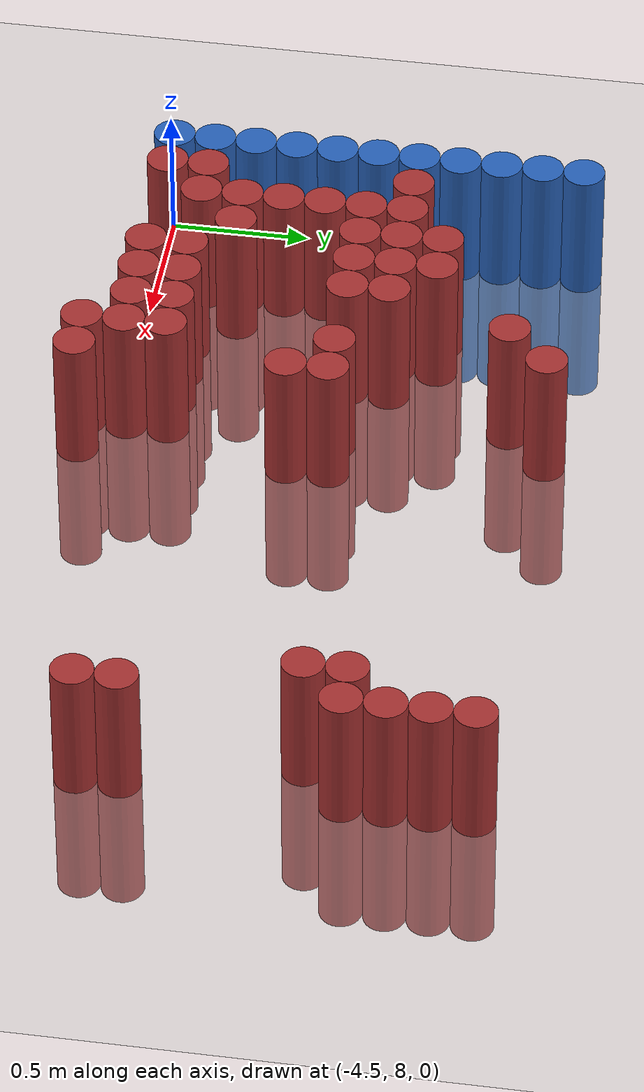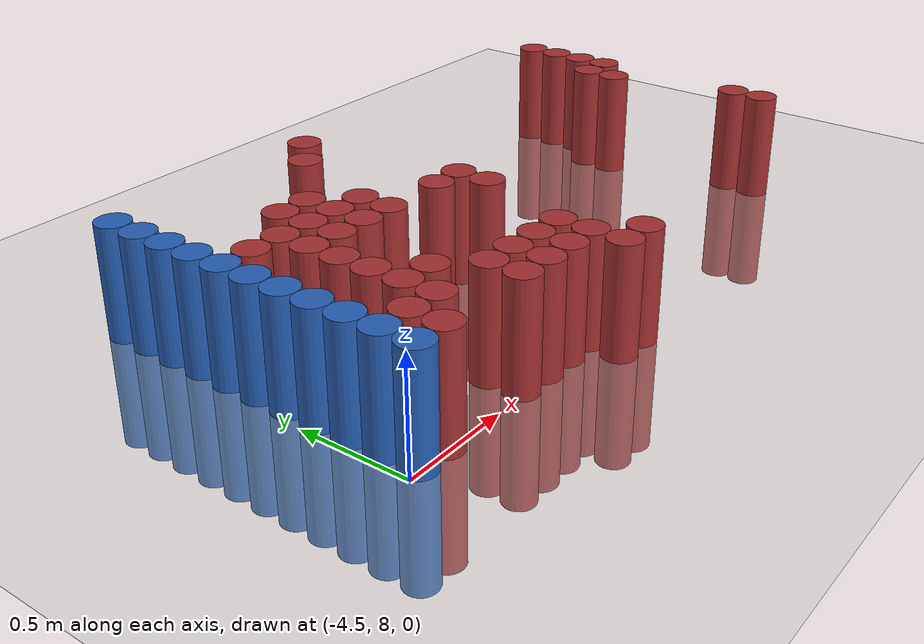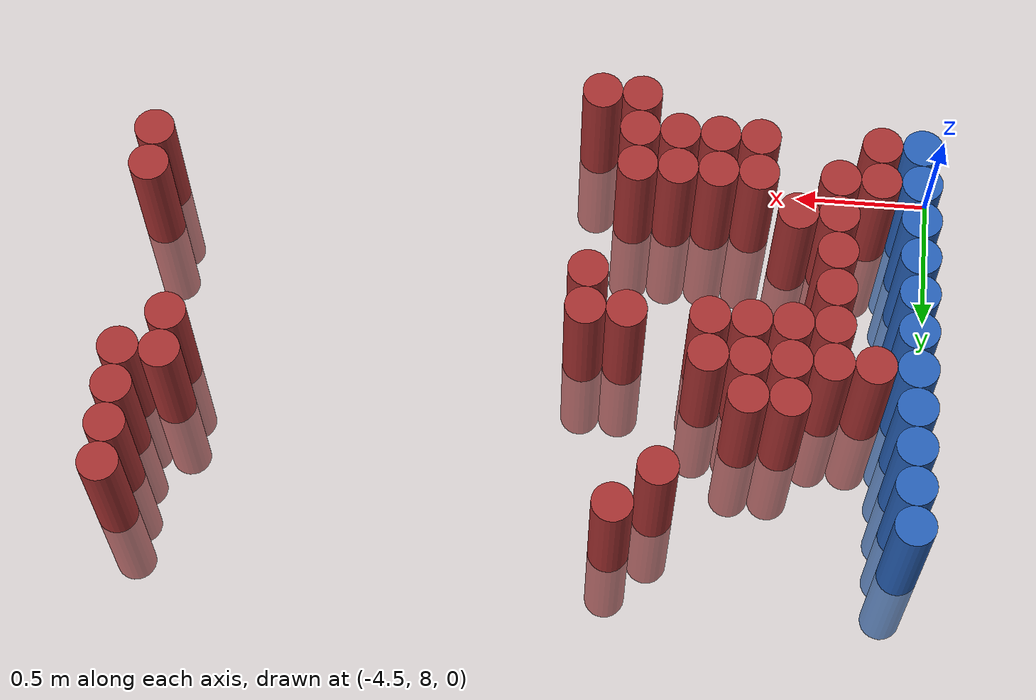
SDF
<sdf version="1.6">
 <world name="default">
  <model name="ground_plane">
   <static>1</static>
   <link name="link">
    <collision name="collision">
     <geometry><plane><normal>0 0 1</normal><size>100 100</size></plane></geometry>
     <surface><friction><ode><mu>100</mu><mu2>50</mu2></ode></friction></surface>
    </collision>
    <visual name="visual">
     <cast_shadows>0</cast_shadows>
     <geometry><plane><normal>0 0 1</normal><size>100 100</size></plane></geometry>
     <material>
      <script><uri>file://media/materials/scripts/gazebo.material</uri><name>Gazebo/Grey</name></script>
     </material>
    </visual>
   </link>
  </model>
  <model name="unit_cylinder_115">
   <static>1</static>
   <pose>-4.425000 8.025000 0.000000 0.000000 0.000000 0.000000</pose>
   <link name="link">
    <inertial>
     <mass>1</mass>
     <inertia><ixx>0.145833</ixx><ixy>0</ixy><ixz>0</ixz><iyy>0.145833</iyy><iyz>0</iyz><izz>0.125</izz></inertia>
    </inertial>
    <collision name="collision">
     <geometry><cylinder><radius>0.075000</radius><length>1</length></cylinder></geometry>
    </collision>
    <visual name="visual">
     <geometry><cylinder><radius>0.075000</radius><length>1</length></cylinder></geometry>
     <material>
      <ambient>0.152000 0.379000 0.720000 1</ambient>
      <diffuse>0.152000 0.379000 0.720000 1</diffuse>
     </material>
     <material>
      <script><name>Gazebo/Grey</name><uri>file://media/materials/scripts/gazebo.material</uri></script>
     </material>
    </visual>
   </link>
  </model>
  <model name="unit_cylinder_116">
   <static>1</static>
   <pose>-4.425000 8.175000 0.000000 0.000000 0.000000 0.000000</pose>
   <link name="link">
    <inertial>
     <mass>1</mass>
     <inertia><ixx>0.145833</ixx><ixy>0</ixy><ixz>0</ixz><iyy>0.145833</iyy><iyz>0</iyz><izz>0.125</izz></inertia>
    </inertial>
    <collision name="collision">
     <geometry><cylinder><radius>0.075000</radius><length>1</length></cylinder></geometry>
    </collision>
    <visual name="visual">
     <geometry><cylinder><radius>0.075000</radius><length>1</length></cylinder></geometry>
     <material>
      <ambient>0.152000 0.379000 0.720000 1</ambient>
      <diffuse>0.152000 0.379000 0.720000 1</diffuse>
     </material>
     <material>
      <script><name>Gazebo/Grey</name><uri>file://media/materials/scripts/gazebo.material</uri></script>
     </material>
    </visual>
   </link>
  </model>
  <model name="unit_cylinder_117">
   <static>1</static>
   <pose>-4.425000 8.325000 0.000000 0.000000 0.000000 0.000000</pose>
   <link name="link">
    <inertial>
     <mass>1</mass>
     <inertia><ixx>0.145833</ixx><ixy>0</ixy><ixz>0</ixz><iyy>0.145833</iyy><iyz>0</iyz><izz>0.125</izz></inertia>
    </inertial>
    <collision name="collision">
     <geometry><cylinder><radius>0.075000</radius><length>1</length></cylinder></geometry>
    </collision>
    <visual name="visual">
     <geometry><cylinder><radius>0.075000</radius><length>1</length></cylinder></geometry>
     <material>
      <ambient>0.152000 0.379000 0.720000 1</ambient>
      <diffuse>0.152000 0.379000 0.720000 1</diffuse>
     </material>
     <material>
      <script><name>Gazebo/Grey</name><uri>file://media/materials/scripts/gazebo.material</uri></script>
     </material>
    </visual>
   </link>
  </model>
  <model name="unit_cylinder_118">
   <static>1</static>
   <pose>-4.425000 8.475000 0.000000 0.000000 0.000000 0.000000</pose>
   <link name="link">
    <inertial>
     <mass>1</mass>
     <inertia><ixx>0.145833</ixx><ixy>0</ixy><ixz>0</ixz><iyy>0.145833</iyy><iyz>0</iyz><izz>0.125</izz></inertia>
    </inertial>
    <collision name="collision">
     <geometry><cylinder><radius>0.075000</radius><length>1</length></cylinder></geometry>
    </collision>
    <visual name="visual">
     <geometry><cylinder><radius>0.075000</radius><length>1</length></cylinder></geometry>
     <material>
      <ambient>0.152000 0.379000 0.720000 1</ambient>
      <diffuse>0.152000 0.379000 0.720000 1</diffuse>
     </material>
     <material>
      <script><name>Gazebo/Grey</name><uri>file://media/materials/scripts/gazebo.material</uri></script>
     </material>
    </visual>
   </link>
  </model>
  <model name="unit_cylinder_119">
   <static>1</static>
   <pose>-4.425000 8.625000 0.000000 0.000000 0.000000 0.000000</pose>
   <link name="link">
    <inertial>
     <mass>1</mass>
     <inertia><ixx>0.145833</ixx><ixy>0</ixy><ixz>0</ixz><iyy>0.145833</iyy><iyz>0</iyz><izz>0.125</izz></inertia>
    </inertial>
    <collision name="collision">
     <geometry><cylinder><radius>0.075000</radius><length>1</length></cylinder></geometry>
    </collision>
    <visual name="visual">
     <geometry><cylinder><radius>0.075000</radius><length>1</length></cylinder></geometry>
     <material>
      <ambient>0.152000 0.379000 0.720000 1</ambient>
      <diffuse>0.152000 0.379000 0.720000 1</diffuse>
     </material>
     <material>
      <script><name>Gazebo/Grey</name><uri>file://media/materials/scripts/gazebo.material</uri></script>
     </material>
    </visual>
   </link>
  </model>
  <model name="unit_cylinder_120">
   <static>1</static>
   <pose>-4.425000 8.775000 0.000000 0.000000 0.000000 0.000000</pose>
   <link name="link">
    <inertial>
     <mass>1</mass>
     <inertia><ixx>0.145833</ixx><ixy>0</ixy><ixz>0</ixz><iyy>0.145833</iyy><iyz>0</iyz><izz>0.125</izz></inertia>
    </inertial>
    <collision name="collision">
     <geometry><cylinder><radius>0.075000</radius><length>1</length></cylinder></geometry>
    </collision>
    <visual name="visual">
     <geometry><cylinder><radius>0.075000</radius><length>1</length></cylinder></geometry>
     <material>
      <ambient>0.152000 0.379000 0.720000 1</ambient>
      <diffuse>0.152000 0.379000 0.720000 1</diffuse>
     </material>
     <material>
      <script><name>Gazebo/Grey</name><uri>file://media/materials/scripts/gazebo.material</uri></script>
     </material>
    </visual>
   </link>
  </model>
  <model name="unit_cylinder_121">
   <static>1</static>
   <pose>-4.425000 8.925000 0.000000 0.000000 0.000000 0.000000</pose>
   <link name="link">
    <inertial>
     <mass>1</mass>
     <inertia><ixx>0.145833</ixx><ixy>0</ixy><ixz>0</ixz><iyy>0.145833</iyy><iyz>0</iyz><izz>0.125</izz></inertia>
    </inertial>
    <collision name="collision">
     <geometry><cylinder><radius>0.075000</radius><length>1</length></cylinder></geometry>
    </collision>
    <visual name="visual">
     <geometry><cylinder><radius>0.075000</radius><length>1</length></cylinder></geometry>
     <material>
      <ambient>0.152000 0.379000 0.720000 1</ambient>
      <diffuse>0.152000 0.379000 0.720000 1</diffuse>
     </material>
     <material>
      <script><name>Gazebo/Grey</name><uri>file://media/materials/scripts/gazebo.material</uri></script>
     </material>
    </visual>
   </link>
  </model>
  <model name="unit_cylinder_122">
   <static>1</static>
   <pose>-4.425000 9.075000 0.000000 0.000000 0.000000 0.000000</pose>
   <link name="link">
    <inertial>
     <mass>1</mass>
     <inertia><ixx>0.145833</ixx><ixy>0</ixy><ixz>0</ixz><iyy>0.145833</iyy><iyz>0</iyz><izz>0.125</izz></inertia>
    </inertial>
    <collision name="collision">
     <geometry><cylinder><radius>0.075000</radius><length>1</length></cylinder></geometry>
    </collision>
    <visual name="visual">
     <geometry><cylinder><radius>0.075000</radius><length>1</length></cylinder></geometry>
     <material>
      <ambient>0.152000 0.379000 0.720000 1</ambient>
      <diffuse>0.152000 0.379000 0.720000 1</diffuse>
     </material>
     <material>
      <script><name>Gazebo/Grey</name><uri>file://media/materials/scripts/gazebo.material</uri></script>
     </material>
    </visual>
   </link>
  </model>
  <model name="unit_cylinder_123">
   <static>1</static>
   <pose>-4.425000 9.225000 0.000000 0.000000 0.000000 0.000000</pose>
   <link name="link">
    <inertial>
     <mass>1</mass>
     <inertia><ixx>0.145833</ixx><ixy>0</ixy><ixz>0</ixz><iyy>0.145833</iyy><iyz>0</iyz><izz>0.125</izz></inertia>
    </inertial>
    <collision name="collision">
     <geometry><cylinder><radius>0.075000</radius><length>1</length></cylinder></geometry>
    </collision>
    <visual name="visual">
     <geometry><cylinder><radius>0.075000</radius><length>1</length></cylinder></geometry>
     <material>
      <ambient>0.152000 0.379000 0.720000 1</ambient>
      <diffuse>0.152000 0.379000 0.720000 1</diffuse>
     </material>
     <material>
      <script><name>Gazebo/Grey</name><uri>file://media/materials/scripts/gazebo.material</uri></script>
     </material>
    </visual>
   </link>
  </model>
  <model name="unit_cylinder_124">
   <static>1</static>
   <pose>-4.425000 9.375000 0.000000 0.000000 0.000000 0.000000</pose>
   <link name="link">
    <inertial>
     <mass>1</mass>
     <inertia><ixx>0.145833</ixx><ixy>0</ixy><ixz>0</ixz><iyy>0.145833</iyy><iyz>0</iyz><izz>0.125</izz></inertia>
    </inertial>
    <collision name="collision">
     <geometry><cylinder><radius>0.075000</radius><length>1</length></cylinder></geometry>
    </collision>
    <visual name="visual">
     <geometry><cylinder><radius>0.075000</radius><length>1</length></cylinder></geometry>
     <material>
      <ambient>0.152000 0.379000 0.720000 1</ambient>
      <diffuse>0.152000 0.379000 0.720000 1</diffuse>
     </material>
     <material>
      <script><name>Gazebo/Grey</name><uri>file://media/materials/scripts/gazebo.material</uri></script>
     </material>
    </visual>
   </link>
  </model>
  <model name="unit_cylinder_125">
   <static>1</static>
   <pose>-4.425000 9.525000 0.000000 0.000000 0.000000 0.000000</pose>
   <link name="link">
    <inertial>
     <mass>1</mass>
     <inertia><ixx>0.145833</ixx><ixy>0</ixy><ixz>0</ixz><iyy>0.145833</iyy><iyz>0</iyz><izz>0.125</izz></inertia>
    </inertial>
    <collision name="collision">
     <geometry><cylinder><radius>0.075000</radius><length>1</length></cylinder></geometry>
    </collision>
    <visual name="visual">
     <geometry><cylinder><radius>0.075000</radius><length>1</length></cylinder></geometry>
     <material>
      <ambient>0.152000 0.379000 0.720000 1</ambient>
      <diffuse>0.152000 0.379000 0.720000 1</diffuse>
     </material>
     <material>
      <script><name>Gazebo/Grey</name><uri>file://media/materials/scripts/gazebo.material</uri></script>
     </material>
    </visual>
   </link>
  </model>
  <model name="unit_cylinder_134">
   <static>1</static>
   <pose>-4.275000 8.025000 0.000000 0.000000 0.000000 0.000000</pose>
   <link name="link">
    <inertial>
     <mass>1</mass>
     <inertia><ixx>0.145833</ixx><ixy>0</ixy><ixz>0</ixz><iyy>0.145833</iyy><iyz>0</iyz><izz>0.125</izz></inertia>
    </inertial>
    <collision name="collision">
     <geometry><cylinder><radius>0.075000</radius><length>1</length></cylinder></geometry>
    </collision>
    <visual name="visual">
     <geometry><cylinder><radius>0.075000</radius><length>1</length></cylinder></geometry>
     <material>
      <ambient>0.648000 0.192000 0.192000 1</ambient>
      <diffuse>0.648000 0.192000 0.192000 1</diffuse>
     </material>
     <material>
      <script><name>Gazebo/Grey</name><uri>file://media/materials/scripts/gazebo.material</uri></script>
     </material>
    </visual>
   </link>
  </model>
  <model name="unit_cylinder_135">
   <static>1</static>
   <pose>-4.275000 8.175000 0.000000 0.000000 0.000000 0.000000</pose>
   <link name="link">
    <inertial>
     <mass>1</mass>
     <inertia><ixx>0.145833</ixx><ixy>0</ixy><ixz>0</ixz><iyy>0.145833</iyy><iyz>0</iyz><izz>0.125</izz></inertia>
    </inertial>
    <collision name="collision">
     <geometry><cylinder><radius>0.075000</radius><length>1</length></cylinder></geometry>
    </collision>
    <visual name="visual">
     <geometry><cylinder><radius>0.075000</radius><length>1</length></cylinder></geometry>
     <material>
      <ambient>0.648000 0.192000 0.192000 1</ambient>
      <diffuse>0.648000 0.192000 0.192000 1</diffuse>
     </material>
     <material>
      <script><name>Gazebo/Grey</name><uri>file://media/materials/scripts/gazebo.material</uri></script>
     </material>
    </visual>
   </link>
  </model>
  <model name="unit_cylinder_136">
   <static>1</static>
   <pose>-4.275000 8.925000 0.000000 0.000000 0.000000 0.000000</pose>
   <link name="link">
    <inertial>
     <mass>1</mass>
     <inertia><ixx>0.145833</ixx><ixy>0</ixy><ixz>0</ixz><iyy>0.145833</iyy><iyz>0</iyz><izz>0.125</izz></inertia>
    </inertial>
    <collision name="collision">
     <geometry><cylinder><radius>0.075000</radius><length>1</length></cylinder></geometry>
    </collision>
    <visual name="visual">
     <geometry><cylinder><radius>0.075000</radius><length>1</length></cylinder></geometry>
     <material>
      <ambient>0.648000 0.192000 0.192000 1</ambient>
      <diffuse>0.648000 0.192000 0.192000 1</diffuse>
     </material>
     <material>
      <script><name>Gazebo/Grey</name><uri>file://media/materials/scripts/gazebo.material</uri></script>
     </material>
    </visual>
   </link>
  </model>
  <model name="unit_cylinder_141">
   <static>1</static>
   <pose>-4.125000 8.175000 0.000000 0.000000 0.000000 0.000000</pose>
   <link name="link">
    <inertial>
     <mass>1</mass>
     <inertia><ixx>0.145833</ixx><ixy>0</ixy><ixz>0</ixz><iyy>0.145833</iyy><iyz>0</iyz><izz>0.125</izz></inertia>
    </inertial>
    <collision name="collision">
     <geometry><cylinder><radius>0.075000</radius><length>1</length></cylinder></geometry>
    </collision>
    <visual name="visual">
     <geometry><cylinder><radius>0.075000</radius><length>1</length></cylinder></geometry>
     <material>
      <ambient>0.648000 0.192000 0.192000 1</ambient>
      <diffuse>0.648000 0.192000 0.192000 1</diffuse>
     </material>
     <material>
      <script><name>Gazebo/Grey</name><uri>file://media/materials/scripts/gazebo.material</uri></script>
     </material>
    </visual>
   </link>
  </model>
  <model name="unit_cylinder_142">
   <static>1</static>
   <pose>-4.125000 8.325000 0.000000 0.000000 0.000000 0.000000</pose>
   <link name="link">
    <inertial>
     <mass>1</mass>
     <inertia><ixx>0.145833</ixx><ixy>0</ixy><ixz>0</ixz><iyy>0.145833</iyy><iyz>0</iyz><izz>0.125</izz></inertia>
    </inertial>
    <collision name="collision">
     <geometry><cylinder><radius>0.075000</radius><length>1</length></cylinder></geometry>
    </collision>
    <visual name="visual">
     <geometry><cylinder><radius>0.075000</radius><length>1</length></cylinder></geometry>
     <material>
      <ambient>0.648000 0.192000 0.192000 1</ambient>
      <diffuse>0.648000 0.192000 0.192000 1</diffuse>
     </material>
     <material>
      <script><name>Gazebo/Grey</name><uri>file://media/materials/scripts/gazebo.material</uri></script>
     </material>
    </visual>
   </link>
  </model>
  <model name="unit_cylinder_143">
   <static>1</static>
   <pose>-4.125000 8.475000 0.000000 0.000000 0.000000 0.000000</pose>
   <link name="link">
    <inertial>
     <mass>1</mass>
     <inertia><ixx>0.145833</ixx><ixy>0</ixy><ixz>0</ixz><iyy>0.145833</iyy><iyz>0</iyz><izz>0.125</izz></inertia>
    </inertial>
    <collision name="collision">
     <geometry><cylinder><radius>0.075000</radius><length>1</length></cylinder></geometry>
    </collision>
    <visual name="visual">
     <geometry><cylinder><radius>0.075000</radius><length>1</length></cylinder></geometry>
     <material>
      <ambient>0.648000 0.192000 0.192000 1</ambient>
      <diffuse>0.648000 0.192000 0.192000 1</diffuse>
     </material>
     <material>
      <script><name>Gazebo/Grey</name><uri>file://media/materials/scripts/gazebo.material</uri></script>
     </material>
    </visual>
   </link>
  </model>
  <model name="unit_cylinder_144">
   <static>1</static>
   <pose>-4.125000 8.625000 0.000000 0.000000 0.000000 0.000000</pose>
   <link name="link">
    <inertial>
     <mass>1</mass>
     <inertia><ixx>0.145833</ixx><ixy>0</ixy><ixz>0</ixz><iyy>0.145833</iyy><iyz>0</iyz><izz>0.125</izz></inertia>
    </inertial>
    <collision name="collision">
     <geometry><cylinder><radius>0.075000</radius><length>1</length></cylinder></geometry>
    </collision>
    <visual name="visual">
     <geometry><cylinder><radius>0.075000</radius><length>1</length></cylinder></geometry>
     <material>
      <ambient>0.648000 0.192000 0.192000 1</ambient>
      <diffuse>0.648000 0.192000 0.192000 1</diffuse>
     </material>
     <material>
      <script><name>Gazebo/Grey</name><uri>file://media/materials/scripts/gazebo.material</uri></script>
     </material>
    </visual>
   </link>
  </model>
  <model name="unit_cylinder_145">
   <static>1</static>
   <pose>-4.125000 8.775000 0.000000 0.000000 0.000000 0.000000</pose>
   <link name="link">
    <inertial>
     <mass>1</mass>
     <inertia><ixx>0.145833</ixx><ixy>0</ixy><ixz>0</ixz><iyy>0.145833</iyy><iyz>0</iyz><izz>0.125</izz></inertia>
    </inertial>
    <collision name="collision">
     <geometry><cylinder><radius>0.075000</radius><length>1</length></cylinder></geometry>
    </collision>
    <visual name="visual">
     <geometry><cylinder><radius>0.075000</radius><length>1</length></cylinder></geometry>
     <material>
      <ambient>0.648000 0.192000 0.192000 1</ambient>
      <diffuse>0.648000 0.192000 0.192000 1</diffuse>
     </material>
     <material>
      <script><name>Gazebo/Grey</name><uri>file://media/materials/scripts/gazebo.material</uri></script>
     </material>
    </visual>
   </link>
  </model>
  <model name="unit_cylinder_146">
   <static>1</static>
   <pose>-4.125000 8.925000 0.000000 0.000000 0.000000 0.000000</pose>
   <link name="link">
    <inertial>
     <mass>1</mass>
     <inertia><ixx>0.145833</ixx><ixy>0</ixy><ixz>0</ixz><iyy>0.145833</iyy><iyz>0</iyz><izz>0.125</izz></inertia>
    </inertial>
    <collision name="collision">
     <geometry><cylinder><radius>0.075000</radius><length>1</length></cylinder></geometry>
    </collision>
    <visual name="visual">
     <geometry><cylinder><radius>0.075000</radius><length>1</length></cylinder></geometry>
     <material>
      <ambient>0.648000 0.192000 0.192000 1</ambient>
      <diffuse>0.648000 0.192000 0.192000 1</diffuse>
     </material>
     <material>
      <script><name>Gazebo/Grey</name><uri>file://media/materials/scripts/gazebo.material</uri></script>
     </material>
    </visual>
   </link>
  </model>
  <model name="unit_cylinder_149">
   <static>1</static>
   <pose>-3.975000 8.325000 0.000000 0.000000 0.000000 0.000000</pose>
   <link name="link">
    <inertial>
     <mass>1</mass>
     <inertia><ixx>0.145833</ixx><ixy>0</ixy><ixz>0</ixz><iyy>0.145833</iyy><iyz>0</iyz><izz>0.125</izz></inertia>
    </inertial>
    <collision name="collision">
     <geometry><cylinder><radius>0.075000</radius><length>1</length></cylinder></geometry>
    </collision>
    <visual name="visual">
     <geometry><cylinder><radius>0.075000</radius><length>1</length></cylinder></geometry>
     <material>
      <ambient>0.648000 0.192000 0.192000 1</ambient>
      <diffuse>0.648000 0.192000 0.192000 1</diffuse>
     </material>
     <material>
      <script><name>Gazebo/Grey</name><uri>file://media/materials/scripts/gazebo.material</uri></script>
     </material>
    </visual>
   </link>
  </model>
  <model name="unit_cylinder_150">
   <static>1</static>
   <pose>-3.975000 8.775000 0.000000 0.000000 0.000000 0.000000</pose>
   <link name="link">
    <inertial>
     <mass>1</mass>
     <inertia><ixx>0.145833</ixx><ixy>0</ixy><ixz>0</ixz><iyy>0.145833</iyy><iyz>0</iyz><izz>0.125</izz></inertia>
    </inertial>
    <collision name="collision">
     <geometry><cylinder><radius>0.075000</radius><length>1</length></cylinder></geometry>
    </collision>
    <visual name="visual">
     <geometry><cylinder><radius>0.075000</radius><length>1</length></cylinder></geometry>
     <material>
      <ambient>0.648000 0.192000 0.192000 1</ambient>
      <diffuse>0.648000 0.192000 0.192000 1</diffuse>
     </material>
     <material>
      <script><name>Gazebo/Grey</name><uri>file://media/materials/scripts/gazebo.material</uri></script>
     </material>
    </visual>
   </link>
  </model>
  <model name="unit_cylinder_151">
   <static>1</static>
   <pose>-3.975000 8.925000 0.000000 0.000000 0.000000 0.000000</pose>
   <link name="link">
    <inertial>
     <mass>1</mass>
     <inertia><ixx>0.145833</ixx><ixy>0</ixy><ixz>0</ixz><iyy>0.145833</iyy><iyz>0</iyz><izz>0.125</izz></inertia>
    </inertial>
    <collision name="collision">
     <geometry><cylinder><radius>0.075000</radius><length>1</length></cylinder></geometry>
    </collision>
    <visual name="visual">
     <geometry><cylinder><radius>0.075000</radius><length>1</length></cylinder></geometry>
     <material>
      <ambient>0.648000 0.192000 0.192000 1</ambient>
      <diffuse>0.648000 0.192000 0.192000 1</diffuse>
     </material>
     <material>
      <script><name>Gazebo/Grey</name><uri>file://media/materials/scripts/gazebo.material</uri></script>
     </material>
    </visual>
   </link>
  </model>
  <model name="unit_cylinder_152">
   <static>1</static>
   <pose>-3.975000 9.075000 0.000000 0.000000 0.000000 0.000000</pose>
   <link name="link">
    <inertial>
     <mass>1</mass>
     <inertia><ixx>0.145833</ixx><ixy>0</ixy><ixz>0</ixz><iyy>0.145833</iyy><iyz>0</iyz><izz>0.125</izz></inertia>
    </inertial>
    <collision name="collision">
     <geometry><cylinder><radius>0.075000</radius><length>1</length></cylinder></geometry>
    </collision>
    <visual name="visual">
     <geometry><cylinder><radius>0.075000</radius><length>1</length></cylinder></geometry>
     <material>
      <ambient>0.648000 0.192000 0.192000 1</ambient>
      <diffuse>0.648000 0.192000 0.192000 1</diffuse>
     </material>
     <material>
      <script><name>Gazebo/Grey</name><uri>file://media/materials/scripts/gazebo.material</uri></script>
     </material>
    </visual>
   </link>
  </model>
  <model name="unit_cylinder_154">
   <static>1</static>
   <pose>-3.825000 8.025000 0.000000 0.000000 0.000000 0.000000</pose>
   <link name="link">
    <inertial>
     <mass>1</mass>
     <inertia><ixx>0.145833</ixx><ixy>0</ixy><ixz>0</ixz><iyy>0.145833</iyy><iyz>0</iyz><izz>0.125</izz></inertia>
    </inertial>
    <collision name="collision">
     <geometry><cylinder><radius>0.075000</radius><length>1</length></cylinder></geometry>
    </collision>
    <visual name="visual">
     <geometry><cylinder><radius>0.075000</radius><length>1</length></cylinder></geometry>
     <material>
      <ambient>0.648000 0.192000 0.192000 1</ambient>
      <diffuse>0.648000 0.192000 0.192000 1</diffuse>
     </material>
     <material>
      <script><name>Gazebo/Grey</name><uri>file://media/materials/scripts/gazebo.material</uri></script>
     </material>
    </visual>
   </link>
  </model>
  <model name="unit_cylinder_155">
   <static>1</static>
   <pose>-3.825000 8.175000 0.000000 0.000000 0.000000 0.000000</pose>
   <link name="link">
    <inertial>
     <mass>1</mass>
     <inertia><ixx>0.145833</ixx><ixy>0</ixy><ixz>0</ixz><iyy>0.145833</iyy><iyz>0</iyz><izz>0.125</izz></inertia>
    </inertial>
    <collision name="collision">
     <geometry><cylinder><radius>0.075000</radius><length>1</length></cylinder></geometry>
    </collision>
    <visual name="visual">
     <geometry><cylinder><radius>0.075000</radius><length>1</length></cylinder></geometry>
     <material>
      <ambient>0.648000 0.192000 0.192000 1</ambient>
      <diffuse>0.648000 0.192000 0.192000 1</diffuse>
     </material>
     <material>
      <script><name>Gazebo/Grey</name><uri>file://media/materials/scripts/gazebo.material</uri></script>
     </material>
    </visual>
   </link>
  </model>
  <model name="unit_cylinder_156">
   <static>1</static>
   <pose>-3.825000 8.775000 0.000000 0.000000 0.000000 0.000000</pose>
   <link name="link">
    <inertial>
     <mass>1</mass>
     <inertia><ixx>0.145833</ixx><ixy>0</ixy><ixz>0</ixz><iyy>0.145833</iyy><iyz>0</iyz><izz>0.125</izz></inertia>
    </inertial>
    <collision name="collision">
     <geometry><cylinder><radius>0.075000</radius><length>1</length></cylinder></geometry>
    </collision>
    <visual name="visual">
     <geometry><cylinder><radius>0.075000</radius><length>1</length></cylinder></geometry>
     <material>
      <ambient>0.648000 0.192000 0.192000 1</ambient>
      <diffuse>0.648000 0.192000 0.192000 1</diffuse>
     </material>
     <material>
      <script><name>Gazebo/Grey</name><uri>file://media/materials/scripts/gazebo.material</uri></script>
     </material>
    </visual>
   </link>
  </model>
  <model name="unit_cylinder_157">
   <static>1</static>
   <pose>-3.825000 8.925000 0.000000 0.000000 0.000000 0.000000</pose>
   <link name="link">
    <inertial>
     <mass>1</mass>
     <inertia><ixx>0.145833</ixx><ixy>0</ixy><ixz>0</ixz><iyy>0.145833</iyy><iyz>0</iyz><izz>0.125</izz></inertia>
    </inertial>
    <collision name="collision">
     <geometry><cylinder><radius>0.075000</radius><length>1</length></cylinder></geometry>
    </collision>
    <visual name="visual">
     <geometry><cylinder><radius>0.075000</radius><length>1</length></cylinder></geometry>
     <material>
      <ambient>0.648000 0.192000 0.192000 1</ambient>
      <diffuse>0.648000 0.192000 0.192000 1</diffuse>
     </material>
     <material>
      <script><name>Gazebo/Grey</name><uri>file://media/materials/scripts/gazebo.material</uri></script>
     </material>
    </visual>
   </link>
  </model>
  <model name="unit_cylinder_158">
   <static>1</static>
   <pose>-3.825000 9.075000 0.000000 0.000000 0.000000 0.000000</pose>
   <link name="link">
    <inertial>
     <mass>1</mass>
     <inertia><ixx>0.145833</ixx><ixy>0</ixy><ixz>0</ixz><iyy>0.145833</iyy><iyz>0</iyz><izz>0.125</izz></inertia>
    </inertial>
    <collision name="collision">
     <geometry><cylinder><radius>0.075000</radius><length>1</length></cylinder></geometry>
    </collision>
    <visual name="visual">
     <geometry><cylinder><radius>0.075000</radius><length>1</length></cylinder></geometry>
     <material>
      <ambient>0.648000 0.192000 0.192000 1</ambient>
      <diffuse>0.648000 0.192000 0.192000 1</diffuse>
     </material>
     <material>
      <script><name>Gazebo/Grey</name><uri>file://media/materials/scripts/gazebo.material</uri></script>
     </material>
    </visual>
   </link>
  </model>
  <model name="unit_cylinder_163">
   <static>1</static>
   <pose>-3.675000 8.025000 0.000000 0.000000 0.000000 0.000000</pose>
   <link name="link">
    <inertial>
     <mass>1</mass>
     <inertia><ixx>0.145833</ixx><ixy>0</ixy><ixz>0</ixz><iyy>0.145833</iyy><iyz>0</iyz><izz>0.125</izz></inertia>
    </inertial>
    <collision name="collision">
     <geometry><cylinder><radius>0.075000</radius><length>1</length></cylinder></geometry>
    </collision>
    <visual name="visual">
     <geometry><cylinder><radius>0.075000</radius><length>1</length></cylinder></geometry>
     <material>
      <ambient>0.648000 0.192000 0.192000 1</ambient>
      <diffuse>0.648000 0.192000 0.192000 1</diffuse>
     </material>
     <material>
      <script><name>Gazebo/Grey</name><uri>file://media/materials/scripts/gazebo.material</uri></script>
     </material>
    </visual>
   </link>
  </model>
  <model name="unit_cylinder_164">
   <static>1</static>
   <pose>-3.675000 8.175000 0.000000 0.000000 0.000000 0.000000</pose>
   <link name="link">
    <inertial>
     <mass>1</mass>
     <inertia><ixx>0.145833</ixx><ixy>0</ixy><ixz>0</ixz><iyy>0.145833</iyy><iyz>0</iyz><izz>0.125</izz></inertia>
    </inertial>
    <collision name="collision">
     <geometry><cylinder><radius>0.075000</radius><length>1</length></cylinder></geometry>
    </collision>
    <visual name="visual">
     <geometry><cylinder><radius>0.075000</radius><length>1</length></cylinder></geometry>
     <material>
      <ambient>0.648000 0.192000 0.192000 1</ambient>
      <diffuse>0.648000 0.192000 0.192000 1</diffuse>
     </material>
     <material>
      <script><name>Gazebo/Grey</name><uri>file://media/materials/scripts/gazebo.material</uri></script>
     </material>
    </visual>
   </link>
  </model>
  <model name="unit_cylinder_165">
   <static>1</static>
   <pose>-3.675000 8.775000 0.000000 0.000000 0.000000 0.000000</pose>
   <link name="link">
    <inertial>
     <mass>1</mass>
     <inertia><ixx>0.145833</ixx><ixy>0</ixy><ixz>0</ixz><iyy>0.145833</iyy><iyz>0</iyz><izz>0.125</izz></inertia>
    </inertial>
    <collision name="collision">
     <geometry><cylinder><radius>0.075000</radius><length>1</length></cylinder></geometry>
    </collision>
    <visual name="visual">
     <geometry><cylinder><radius>0.075000</radius><length>1</length></cylinder></geometry>
     <material>
      <ambient>0.648000 0.192000 0.192000 1</ambient>
      <diffuse>0.648000 0.192000 0.192000 1</diffuse>
     </material>
     <material>
      <script><name>Gazebo/Grey</name><uri>file://media/materials/scripts/gazebo.material</uri></script>
     </material>
    </visual>
   </link>
  </model>
  <model name="unit_cylinder_166">
   <static>1</static>
   <pose>-3.675000 8.925000 0.000000 0.000000 0.000000 0.000000</pose>
   <link name="link">
    <inertial>
     <mass>1</mass>
     <inertia><ixx>0.145833</ixx><ixy>0</ixy><ixz>0</ixz><iyy>0.145833</iyy><iyz>0</iyz><izz>0.125</izz></inertia>
    </inertial>
    <collision name="collision">
     <geometry><cylinder><radius>0.075000</radius><length>1</length></cylinder></geometry>
    </collision>
    <visual name="visual">
     <geometry><cylinder><radius>0.075000</radius><length>1</length></cylinder></geometry>
     <material>
      <ambient>0.648000 0.192000 0.192000 1</ambient>
      <diffuse>0.648000 0.192000 0.192000 1</diffuse>
     </material>
     <material>
      <script><name>Gazebo/Grey</name><uri>file://media/materials/scripts/gazebo.material</uri></script>
     </material>
    </visual>
   </link>
  </model>
  <model name="unit_cylinder_175">
   <static>1</static>
   <pose>-3.525000 8.025000 0.000000 0.000000 0.000000 0.000000</pose>
   <link name="link">
    <inertial>
     <mass>1</mass>
     <inertia><ixx>0.145833</ixx><ixy>0</ixy><ixz>0</ixz><iyy>0.145833</iyy><iyz>0</iyz><izz>0.125</izz></inertia>
    </inertial>
    <collision name="collision">
     <geometry><cylinder><radius>0.075000</radius><length>1</length></cylinder></geometry>
    </collision>
    <visual name="visual">
     <geometry><cylinder><radius>0.075000</radius><length>1</length></cylinder></geometry>
     <material>
      <ambient>0.648000 0.192000 0.192000 1</ambient>
      <diffuse>0.648000 0.192000 0.192000 1</diffuse>
     </material>
     <material>
      <script><name>Gazebo/Grey</name><uri>file://media/materials/scripts/gazebo.material</uri></script>
     </material>
    </visual>
   </link>
  </model>
  <model name="unit_cylinder_176">
   <static>1</static>
   <pose>-3.525000 8.175000 0.000000 0.000000 0.000000 0.000000</pose>
   <link name="link">
    <inertial>
     <mass>1</mass>
     <inertia><ixx>0.145833</ixx><ixy>0</ixy><ixz>0</ixz><iyy>0.145833</iyy><iyz>0</iyz><izz>0.125</izz></inertia>
    </inertial>
    <collision name="collision">
     <geometry><cylinder><radius>0.075000</radius><length>1</length></cylinder></geometry>
    </collision>
    <visual name="visual">
     <geometry><cylinder><radius>0.075000</radius><length>1</length></cylinder></geometry>
     <material>
      <ambient>0.648000 0.192000 0.192000 1</ambient>
      <diffuse>0.648000 0.192000 0.192000 1</diffuse>
     </material>
     <material>
      <script><name>Gazebo/Grey</name><uri>file://media/materials/scripts/gazebo.material</uri></script>
     </material>
    </visual>
   </link>
  </model>
  <model name="unit_cylinder_177">
   <static>1</static>
   <pose>-3.525000 9.375000 0.000000 0.000000 0.000000 0.000000</pose>
   <link name="link">
    <inertial>
     <mass>1</mass>
     <inertia><ixx>0.145833</ixx><ixy>0</ixy><ixz>0</ixz><iyy>0.145833</iyy><iyz>0</iyz><izz>0.125</izz></inertia>
    </inertial>
    <collision name="collision">
     <geometry><cylinder><radius>0.075000</radius><length>1</length></cylinder></geometry>
    </collision>
    <visual name="visual">
     <geometry><cylinder><radius>0.075000</radius><length>1</length></cylinder></geometry>
     <material>
      <ambient>0.648000 0.192000 0.192000 1</ambient>
      <diffuse>0.648000 0.192000 0.192000 1</diffuse>
     </material>
     <material>
      <script><name>Gazebo/Grey</name><uri>file://media/materials/scripts/gazebo.material</uri></script>
     </material>
    </visual>
   </link>
  </model>
  <model name="unit_cylinder_180">
   <static>1</static>
   <pose>-3.375000 7.875000 0.000000 0.000000 0.000000 0.000000</pose>
   <link name="link">
    <inertial>
     <mass>1</mass>
     <inertia><ixx>0.145833</ixx><ixy>0</ixy><ixz>0</ixz><iyy>0.145833</iyy><iyz>0</iyz><izz>0.125</izz></inertia>
    </inertial>
    <collision name="collision">
     <geometry><cylinder><radius>0.075000</radius><length>1</length></cylinder></geometry>
    </collision>
    <visual name="visual">
     <geometry><cylinder><radius>0.075000</radius><length>1</length></cylinder></geometry>
     <material>
      <ambient>0.648000 0.192000 0.192000 1</ambient>
      <diffuse>0.648000 0.192000 0.192000 1</diffuse>
     </material>
     <material>
      <script><name>Gazebo/Grey</name><uri>file://media/materials/scripts/gazebo.material</uri></script>
     </material>
    </visual>
   </link>
  </model>
  <model name="unit_cylinder_181">
   <static>1</static>
   <pose>-3.375000 8.025000 0.000000 0.000000 0.000000 0.000000</pose>
   <link name="link">
    <inertial>
     <mass>1</mass>
     <inertia><ixx>0.145833</ixx><ixy>0</ixy><ixz>0</ixz><iyy>0.145833</iyy><iyz>0</iyz><izz>0.125</izz></inertia>
    </inertial>
    <collision name="collision">
     <geometry><cylinder><radius>0.075000</radius><length>1</length></cylinder></geometry>
    </collision>
    <visual name="visual">
     <geometry><cylinder><radius>0.075000</radius><length>1</length></cylinder></geometry>
     <material>
      <ambient>0.648000 0.192000 0.192000 1</ambient>
      <diffuse>0.648000 0.192000 0.192000 1</diffuse>
     </material>
     <material>
      <script><name>Gazebo/Grey</name><uri>file://media/materials/scripts/gazebo.material</uri></script>
     </material>
    </visual>
   </link>
  </model>
  <model name="unit_cylinder_182">
   <static>1</static>
   <pose>-3.375000 8.175000 0.000000 0.000000 0.000000 0.000000</pose>
   <link name="link">
    <inertial>
     <mass>1</mass>
     <inertia><ixx>0.145833</ixx><ixy>0</ixy><ixz>0</ixz><iyy>0.145833</iyy><iyz>0</iyz><izz>0.125</izz></inertia>
    </inertial>
    <collision name="collision">
     <geometry><cylinder><radius>0.075000</radius><length>1</length></cylinder></geometry>
    </collision>
    <visual name="visual">
     <geometry><cylinder><radius>0.075000</radius><length>1</length></cylinder></geometry>
     <material>
      <ambient>0.648000 0.192000 0.192000 1</ambient>
      <diffuse>0.648000 0.192000 0.192000 1</diffuse>
     </material>
     <material>
      <script><name>Gazebo/Grey</name><uri>file://media/materials/scripts/gazebo.material</uri></script>
     </material>
    </visual>
   </link>
  </model>
  <model name="unit_cylinder_183">
   <static>1</static>
   <pose>-3.375000 8.775000 0.000000 0.000000 0.000000 0.000000</pose>
   <link name="link">
    <inertial>
     <mass>1</mass>
     <inertia><ixx>0.145833</ixx><ixy>0</ixy><ixz>0</ixz><iyy>0.145833</iyy><iyz>0</iyz><izz>0.125</izz></inertia>
    </inertial>
    <collision name="collision">
     <geometry><cylinder><radius>0.075000</radius><length>1</length></cylinder></geometry>
    </collision>
    <visual name="visual">
     <geometry><cylinder><radius>0.075000</radius><length>1</length></cylinder></geometry>
     <material>
      <ambient>0.648000 0.192000 0.192000 1</ambient>
      <diffuse>0.648000 0.192000 0.192000 1</diffuse>
     </material>
     <material>
      <script><name>Gazebo/Grey</name><uri>file://media/materials/scripts/gazebo.material</uri></script>
     </material>
    </visual>
   </link>
  </model>
  <model name="unit_cylinder_184">
   <static>1</static>
   <pose>-3.375000 9.525000 0.000000 0.000000 0.000000 0.000000</pose>
   <link name="link">
    <inertial>
     <mass>1</mass>
     <inertia><ixx>0.145833</ixx><ixy>0</ixy><ixz>0</ixz><iyy>0.145833</iyy><iyz>0</iyz><izz>0.125</izz></inertia>
    </inertial>
    <collision name="collision">
     <geometry><cylinder><radius>0.075000</radius><length>1</length></cylinder></geometry>
    </collision>
    <visual name="visual">
     <geometry><cylinder><radius>0.075000</radius><length>1</length></cylinder></geometry>
     <material>
      <ambient>0.648000 0.192000 0.192000 1</ambient>
      <diffuse>0.648000 0.192000 0.192000 1</diffuse>
     </material>
     <material>
      <script><name>Gazebo/Grey</name><uri>file://media/materials/scripts/gazebo.material</uri></script>
     </material>
    </visual>
   </link>
  </model>
  <model name="unit_cylinder_186">
   <static>1</static>
   <pose>-3.225000 7.875000 0.000000 0.000000 0.000000 0.000000</pose>
   <link name="link">
    <inertial>
     <mass>1</mass>
     <inertia><ixx>0.145833</ixx><ixy>0</ixy><ixz>0</ixz><iyy>0.145833</iyy><iyz>0</iyz><izz>0.125</izz></inertia>
    </inertial>
    <collision name="collision">
     <geometry><cylinder><radius>0.075000</radius><length>1</length></cylinder></geometry>
    </collision>
    <visual name="visual">
     <geometry><cylinder><radius>0.075000</radius><length>1</length></cylinder></geometry>
     <material>
      <ambient>0.648000 0.192000 0.192000 1</ambient>
      <diffuse>0.648000 0.192000 0.192000 1</diffuse>
     </material>
     <material>
      <script><name>Gazebo/Grey</name><uri>file://media/materials/scripts/gazebo.material</uri></script>
     </material>
    </visual>
   </link>
  </model>
  <model name="unit_cylinder_187">
   <static>1</static>
   <pose>-3.225000 8.625000 0.000000 0.000000 0.000000 0.000000</pose>
   <link name="link">
    <inertial>
     <mass>1</mass>
     <inertia><ixx>0.145833</ixx><ixy>0</ixy><ixz>0</ixz><iyy>0.145833</iyy><iyz>0</iyz><izz>0.125</izz></inertia>
    </inertial>
    <collision name="collision">
     <geometry><cylinder><radius>0.075000</radius><length>1</length></cylinder></geometry>
    </collision>
    <visual name="visual">
     <geometry><cylinder><radius>0.075000</radius><length>1</length></cylinder></geometry>
     <material>
      <ambient>0.648000 0.192000 0.192000 1</ambient>
      <diffuse>0.648000 0.192000 0.192000 1</diffuse>
     </material>
     <material>
      <script><name>Gazebo/Grey</name><uri>file://media/materials/scripts/gazebo.material</uri></script>
     </material>
    </visual>
   </link>
  </model>
  <model name="unit_cylinder_188">
   <static>1</static>
   <pose>-3.225000 8.775000 0.000000 0.000000 0.000000 0.000000</pose>
   <link name="link">
    <inertial>
     <mass>1</mass>
     <inertia><ixx>0.145833</ixx><ixy>0</ixy><ixz>0</ixz><iyy>0.145833</iyy><iyz>0</iyz><izz>0.125</izz></inertia>
    </inertial>
    <collision name="collision">
     <geometry><cylinder><radius>0.075000</radius><length>1</length></cylinder></geometry>
    </collision>
    <visual name="visual">
     <geometry><cylinder><radius>0.075000</radius><length>1</length></cylinder></geometry>
     <material>
      <ambient>0.648000 0.192000 0.192000 1</ambient>
      <diffuse>0.648000 0.192000 0.192000 1</diffuse>
     </material>
     <material>
      <script><name>Gazebo/Grey</name><uri>file://media/materials/scripts/gazebo.material</uri></script>
     </material>
    </visual>
   </link>
  </model>
  <model name="unit_cylinder_226">
   <static>1</static>
   <pose>-1.725000 8.925000 0.000000 0.000000 0.000000 0.000000</pose>
   <link name="link">
    <inertial>
     <mass>1</mass>
     <inertia><ixx>0.145833</ixx><ixy>0</ixy><ixz>0</ixz><iyy>0.145833</iyy><iyz>0</iyz><izz>0.125</izz></inertia>
    </inertial>
    <collision name="collision">
     <geometry><cylinder><radius>0.075000</radius><length>1</length></cylinder></geometry>
    </collision>
    <visual name="visual">
     <geometry><cylinder><radius>0.075000</radius><length>1</length></cylinder></geometry>
     <material>
      <ambient>0.648000 0.192000 0.192000 1</ambient>
      <diffuse>0.648000 0.192000 0.192000 1</diffuse>
     </material>
     <material>
      <script><name>Gazebo/Grey</name><uri>file://media/materials/scripts/gazebo.material</uri></script>
     </material>
    </visual>
   </link>
  </model>
  <model name="unit_cylinder_227">
   <static>1</static>
   <pose>-1.725000 9.075000 0.000000 0.000000 0.000000 0.000000</pose>
   <link name="link">
    <inertial>
     <mass>1</mass>
     <inertia><ixx>0.145833</ixx><ixy>0</ixy><ixz>0</ixz><iyy>0.145833</iyy><iyz>0</iyz><izz>0.125</izz></inertia>
    </inertial>
    <collision name="collision">
     <geometry><cylinder><radius>0.075000</radius><length>1</length></cylinder></geometry>
    </collision>
    <visual name="visual">
     <geometry><cylinder><radius>0.075000</radius><length>1</length></cylinder></geometry>
     <material>
      <ambient>0.648000 0.192000 0.192000 1</ambient>
      <diffuse>0.648000 0.192000 0.192000 1</diffuse>
     </material>
     <material>
      <script><name>Gazebo/Grey</name><uri>file://media/materials/scripts/gazebo.material</uri></script>
     </material>
    </visual>
   </link>
  </model>
  <model name="unit_cylinder_229">
   <static>1</static>
   <pose>-1.575000 8.175000 0.000000 0.000000 0.000000 0.000000</pose>
   <link name="link">
    <inertial>
     <mass>1</mass>
     <inertia><ixx>0.145833</ixx><ixy>0</ixy><ixz>0</ixz><iyy>0.145833</iyy><iyz>0</iyz><izz>0.125</izz></inertia>
    </inertial>
    <collision name="collision">
     <geometry><cylinder><radius>0.075000</radius><length>1</length></cylinder></geometry>
    </collision>
    <visual name="visual">
     <geometry><cylinder><radius>0.075000</radius><length>1</length></cylinder></geometry>
     <material>
      <ambient>0.648000 0.192000 0.192000 1</ambient>
      <diffuse>0.648000 0.192000 0.192000 1</diffuse>
     </material>
     <material>
      <script><name>Gazebo/Grey</name><uri>file://media/materials/scripts/gazebo.material</uri></script>
     </material>
    </visual>
   </link>
  </model>
  <model name="unit_cylinder_230">
   <static>1</static>
   <pose>-1.575000 8.325000 0.000000 0.000000 0.000000 0.000000</pose>
   <link name="link">
    <inertial>
     <mass>1</mass>
     <inertia><ixx>0.145833</ixx><ixy>0</ixy><ixz>0</ixz><iyy>0.145833</iyy><iyz>0</iyz><izz>0.125</izz></inertia>
    </inertial>
    <collision name="collision">
     <geometry><cylinder><radius>0.075000</radius><length>1</length></cylinder></geometry>
    </collision>
    <visual name="visual">
     <geometry><cylinder><radius>0.075000</radius><length>1</length></cylinder></geometry>
     <material>
      <ambient>0.648000 0.192000 0.192000 1</ambient>
      <diffuse>0.648000 0.192000 0.192000 1</diffuse>
     </material>
     <material>
      <script><name>Gazebo/Grey</name><uri>file://media/materials/scripts/gazebo.material</uri></script>
     </material>
    </visual>
   </link>
  </model>
  <model name="unit_cylinder_231">
   <static>1</static>
   <pose>-1.575000 9.075000 0.000000 0.000000 0.000000 0.000000</pose>
   <link name="link">
    <inertial>
     <mass>1</mass>
     <inertia><ixx>0.145833</ixx><ixy>0</ixy><ixz>0</ixz><iyy>0.145833</iyy><iyz>0</iyz><izz>0.125</izz></inertia>
    </inertial>
    <collision name="collision">
     <geometry><cylinder><radius>0.075000</radius><length>1</length></cylinder></geometry>
    </collision>
    <visual name="visual">
     <geometry><cylinder><radius>0.075000</radius><length>1</length></cylinder></geometry>
     <material>
      <ambient>0.648000 0.192000 0.192000 1</ambient>
      <diffuse>0.648000 0.192000 0.192000 1</diffuse>
     </material>
     <material>
      <script><name>Gazebo/Grey</name><uri>file://media/materials/scripts/gazebo.material</uri></script>
     </material>
    </visual>
   </link>
  </model>
  <model name="unit_cylinder_232">
   <static>1</static>
   <pose>-1.575000 9.225000 0.000000 0.000000 0.000000 0.000000</pose>
   <link name="link">
    <inertial>
     <mass>1</mass>
     <inertia><ixx>0.145833</ixx><ixy>0</ixy><ixz>0</ixz><iyy>0.145833</iyy><iyz>0</iyz><izz>0.125</izz></inertia>
    </inertial>
    <collision name="collision">
     <geometry><cylinder><radius>0.075000</radius><length>1</length></cylinder></geometry>
    </collision>
    <visual name="visual">
     <geometry><cylinder><radius>0.075000</radius><length>1</length></cylinder></geometry>
     <material>
      <ambient>0.648000 0.192000 0.192000 1</ambient>
      <diffuse>0.648000 0.192000 0.192000 1</diffuse>
     </material>
     <material>
      <script><name>Gazebo/Grey</name><uri>file://media/materials/scripts/gazebo.material</uri></script>
     </material>
    </visual>
   </link>
  </model>
  <model name="unit_cylinder_233">
   <static>1</static>
   <pose>-1.575000 9.375000 0.000000 0.000000 0.000000 0.000000</pose>
   <link name="link">
    <inertial>
     <mass>1</mass>
     <inertia><ixx>0.145833</ixx><ixy>0</ixy><ixz>0</ixz><iyy>0.145833</iyy><iyz>0</iyz><izz>0.125</izz></inertia>
    </inertial>
    <collision name="collision">
     <geometry><cylinder><radius>0.075000</radius><length>1</length></cylinder></geometry>
    </collision>
    <visual name="visual">
     <geometry><cylinder><radius>0.075000</radius><length>1</length></cylinder></geometry>
     <material>
      <ambient>0.648000 0.192000 0.192000 1</ambient>
      <diffuse>0.648000 0.192000 0.192000 1</diffuse>
     </material>
     <material>
      <script><name>Gazebo/Grey</name><uri>file://media/materials/scripts/gazebo.material</uri></script>
     </material>
    </visual>
   </link>
  </model>
  <model name="unit_cylinder_234">
   <static>1</static>
   <pose>-1.575000 9.525000 0.000000 0.000000 0.000000 0.000000</pose>
   <link name="link">
    <inertial>
     <mass>1</mass>
     <inertia><ixx>0.145833</ixx><ixy>0</ixy><ixz>0</ixz><iyy>0.145833</iyy><iyz>0</iyz><izz>0.125</izz></inertia>
    </inertial>
    <collision name="collision">
     <geometry><cylinder><radius>0.075000</radius><length>1</length></cylinder></geometry>
    </collision>
    <visual name="visual">
     <geometry><cylinder><radius>0.075000</radius><length>1</length></cylinder></geometry>
     <material>
      <ambient>0.648000 0.192000 0.192000 1</ambient>
      <diffuse>0.648000 0.192000 0.192000 1</diffuse>
     </material>
     <material>
      <script><name>Gazebo/Grey</name><uri>file://media/materials/scripts/gazebo.material</uri></script>
     </material>
    </visual>
   </link>
  </model>
 </world>
</sdf>
